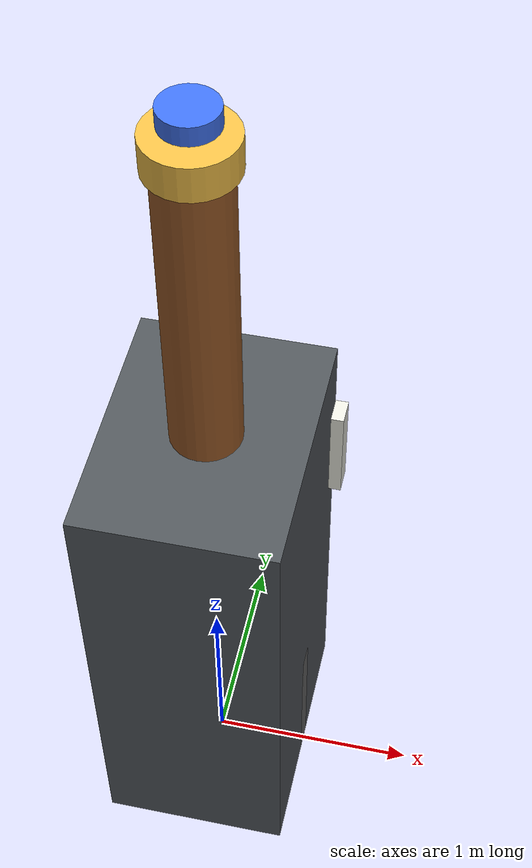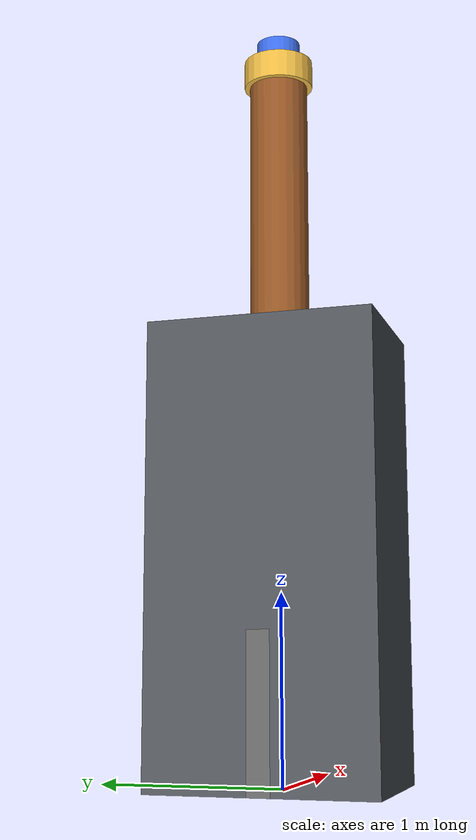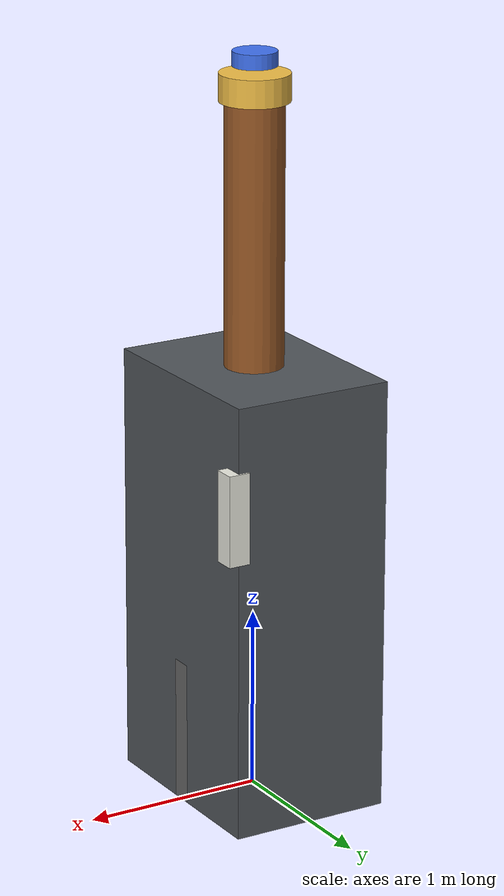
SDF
<?xml version="1.0"?>
<sdf version="1.10">
<model name="breaker_single_c">
  <static>true</static>
  <link name="body">
    <visual name="tank">
      <pose>0 0 1.2 0 0 0</pose>
      <geometry><box><size>0.9 1.2 2.4</size></box></geometry>
      <material>
        <ambient>0.25 0.27 0.28 1</ambient>
        <diffuse>0.32 0.34 0.36 1</diffuse>
      </material>
    </visual>
    <visual name="insulator">
      <pose>0 0 3.1 0 0 0</pose>
      <geometry><cylinder><radius>0.16</radius><length>1.6</length></cylinder></geometry>
      <material>
        <ambient>0.5 0.3 0.12 1</ambient>
        <diffuse>0.6 0.35 0.15 1</diffuse>
      </material>
    </visual>
    <visual name="cap">
      <pose>0 0 3.9 0 0 0</pose>
      <geometry><cylinder><radius>0.19</radius><length>0.15</length></cylinder></geometry>
      <material>
        <ambient>0.85 0.65 0.22 1</ambient>
        <diffuse>0.95 0.75 0.28 1</diffuse>
      </material>
    </visual>
    <visual name="phase_marker">
      <pose>0 0 4.05 0 0 0</pose>
      <geometry><cylinder><radius>0.12</radius><length>0.08</length></cylinder></geometry>
      <material>
        <ambient>0.15 0.35 0.85 1</ambient>
        <diffuse>0.25 0.45 0.95 1</diffuse>
      </material>
    </visual>
    <visual name="mechanism">
      <pose>0.45 0.55 1.8 0 0 0</pose>
      <geometry><box><size>0.12 0.12 0.5</size></box></geometry>
      <material>
        <ambient>0.85 0.85 0.82 1</ambient>
        <diffuse>0.92 0.92 0.88 1</diffuse>
      </material>
    </visual>
    <visual name="support_l">
      <pose>-0.35 0 0.4 0 0 0</pose>
      <geometry><box><size>0.2 0.12 0.8</size></box></geometry>
      <material>
        <ambient>0.3 0.3 0.3 1</ambient>
        <diffuse>0.4 0.4 0.4 1</diffuse>
      </material>
    </visual>
    <visual name="support_r">
      <pose>0.35 0 0.4 0 0 0</pose>
      <geometry><box><size>0.2 0.12 0.8</size></box></geometry>
      <material>
        <ambient>0.3 0.3 0.3 1</ambient>
        <diffuse>0.4 0.4 0.4 1</diffuse>
      </material>
    </visual>
    <collision name="collision">
      <pose>0 0 1.2 0 0 0</pose>
      <geometry><box><size>0.9 1.2 2.4</size></box></geometry>
    </collision>
  </link>
</model>
</sdf>
